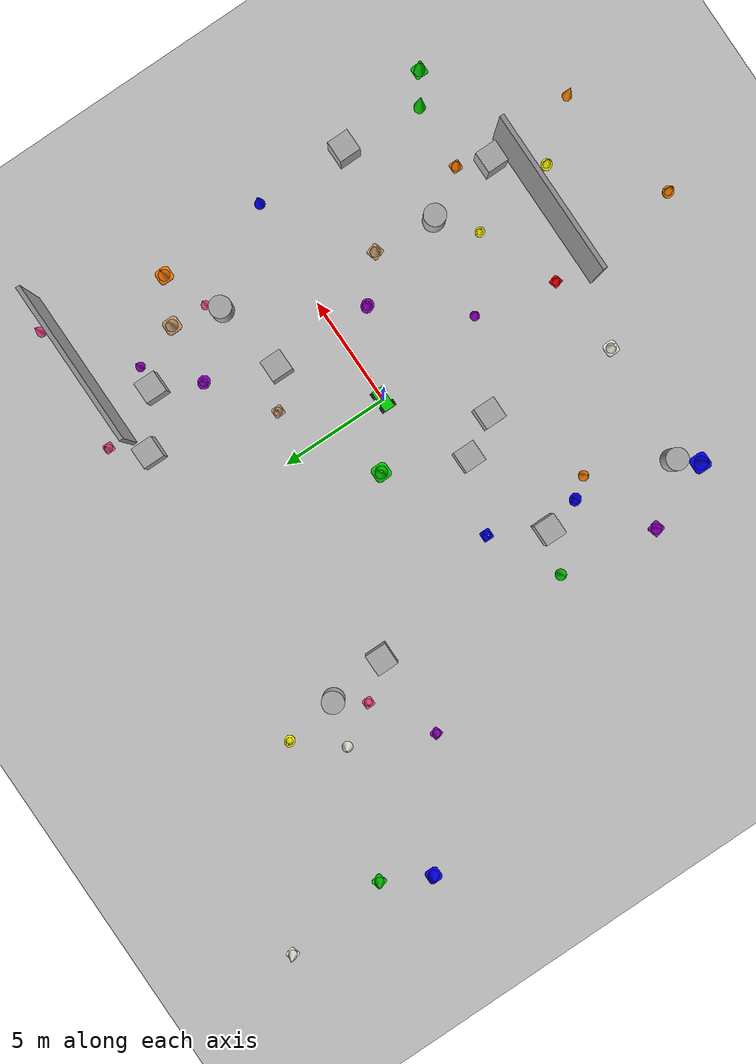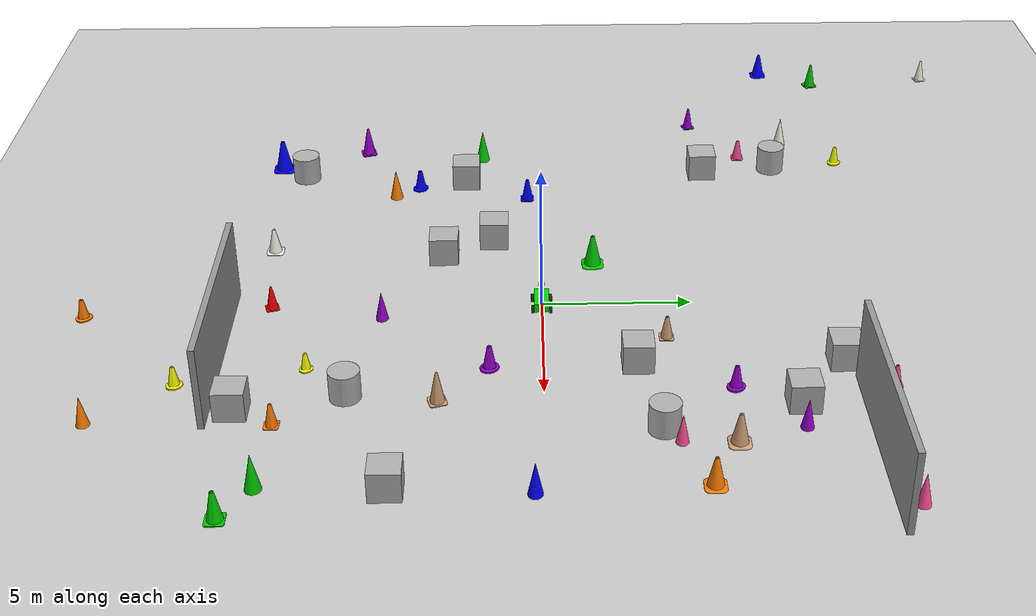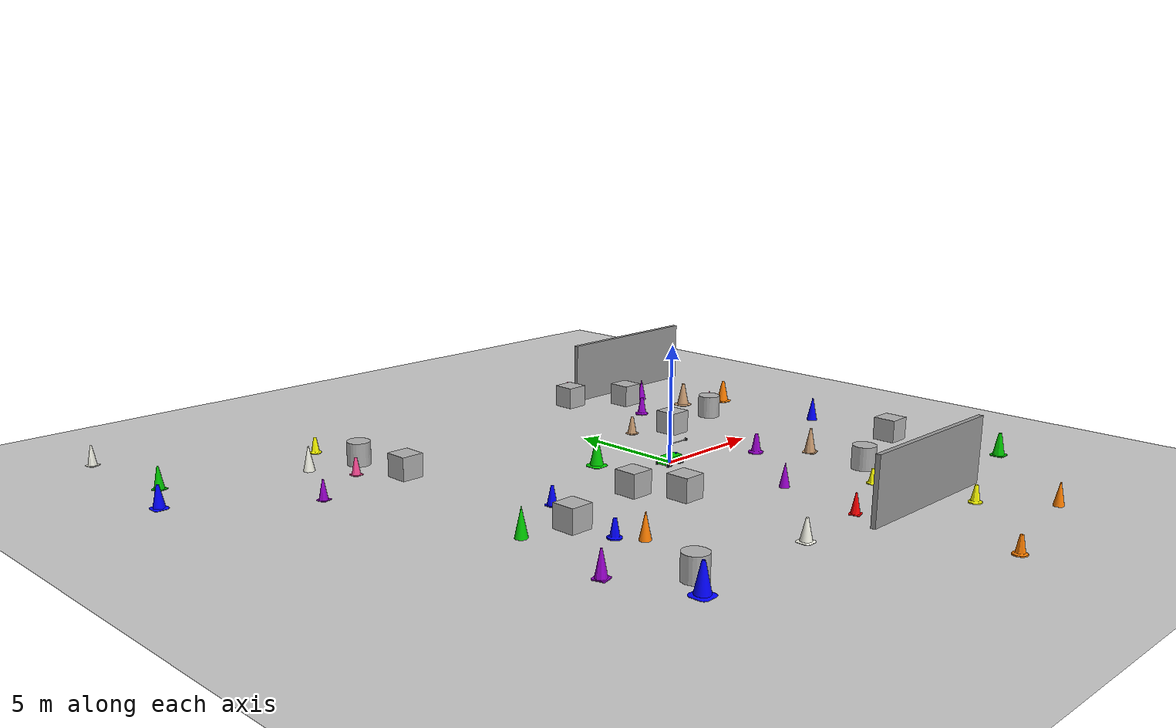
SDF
<sdf version="1.9">
 <world name="empty">
  <physics name="1ms" type="ignored">
   <max_step_size>0.001</max_step_size>
   <real_time_factor>1</real_time_factor>
   <real_time_update_rate>1000</real_time_update_rate>
  </physics>
  <plugin name="gz::sim::systems::Physics" filename="ignition-gazebo-physics-system"/>
  <plugin name="gz::sim::systems::UserCommands" filename="ignition-gazebo-user-commands-system"/>
  <plugin name="gz::sim::systems::SceneBroadcaster" filename="ignition-gazebo-scene-broadcaster-system"/>
  <plugin name="gz::sim::systems::Contact" filename="ignition-gazebo-contact-system"/>
  <plugin name="gz::sim::systems::Sensors" filename="ignition-gazebo-sensors-system">
   <render_engine>ogre2</render_engine>
  </plugin>
  <plugin name="gz::sim::systems::Imu" filename="ignition-gazebo-imu-system"/>
  <gravity>0 0 -9.8</gravity>
  <magnetic_field>6e-06 2.3e-05 -4.2e-05</magnetic_field>
  <atmosphere type="adiabatic"/>
  <scene><ambient>0.4 0.4 0.4 1</ambient><background>0.7 0.7 0.7 1</background><shadows>true</shadows></scene>
  <model name="ground_plane">
   <static>true</static>
   <link name="link">
    <collision name="collision">
     <geometry><plane><normal>0 0 1</normal><size>100 100</size></plane></geometry>
    </collision>
    <visual name="visual">
     <geometry><plane><normal>0 0 1</normal><size>100 100</size></plane></geometry>
     <material>
      <ambient>0.8 0.8 0.8 1</ambient>
      <diffuse>0.8 0.8 0.8 1</diffuse>
      <specular>0.8 0.8 0.8 1</specular>
     </material>
    </visual>
    <inertial>
     <mass>1</mass>
     <inertia><ixx>1</ixx><ixy>0</ixy><ixz>0</ixz><iyy>1</iyy><iyz>0</iyz><izz>1</izz></inertia>
    </inertial>
   </link>
  </model>
  <model name="my_robo">
   <link name="base_link">
    <inertial>
     <pose>0.006547 0 0.115974 0 -0 0</pose>
     <mass>6.1100000000000003</mass>
     <inertia>
      <ixx>0.87523700000000004</ixx>
      <ixy>0</ixy>
      <ixz>-0.0081610499999999996</ixz>
      <iyy>0.60416499999999995</iyy>
      <iyz>0</iyz>
      <izz>0.60400799999999999</izz>
     </inertia>
    </inertial>
    <collision name="base_link_collision"><geometry><box><size>1 0.5 0.3</size></box></geometry></collision>
    <collision name="base_link_fixed_joint_lump__arm_base_collision_1">
     <pose>0 0 0.55 0 0 0</pose>
     <geometry><cylinder><length>0.5</length><radius>0.050000000000000003</radius></cylinder></geometry>
    </collision>
    <collision name="base_link_fixed_joint_lump__arm_joint_cylinder_collision_2">
     <pose>0 0 0.8 0 0 0</pose>
     <geometry><cylinder><length>0.5</length><radius>0.050000000000000003</radius></cylinder></geometry>
    </collision>
    <collision name="base_link_fixed_joint_lump__imu_link_collision_3">
     <pose>0 0 0.16 0 0 0</pose>
     <geometry><box><size>0.03 0.03 0.01</size></box></geometry>
    </collision>
    <collision name="base_link_fixed_joint_lump__lidar_link_collision_4">
     <pose>0.4 0 0.32 0 0 0</pose>
     <geometry>
      <cylinder><length>0.040000000000000001</length><radius>0.050000000000000003</radius></cylinder>
     </geometry>
    </collision>
    <visual name="base_link_visual">
     <pose>0 0 0.15 0 0 0</pose>
     <geometry><box><size>1 0.5 0.3</size></box></geometry>
     <material><diffuse>0 0.875 0 1</diffuse><ambient>0 0.875 0 1</ambient></material>
    </visual>
    <visual name="base_link_fixed_joint_lump__arm_base_visual_1">
     <pose>0 0 0.55 0 0 0</pose>
     <geometry><cylinder><length>0.5</length><radius>0.050000000000000003</radius></cylinder></geometry>
     <material><diffuse>1 1 1 1</diffuse><ambient>1 1 1 1</ambient></material>
    </visual>
    <visual name="base_link_fixed_joint_lump__arm_joint_cylinder_visual_2">
     <pose>0 0 0.8 0 1.570796326794897 -1.570796326794897</pose>
     <geometry>
      <cylinder><length>0.20000000000000001</length><radius>0.059999999999999998</radius></cylinder>
     </geometry>
     <material><diffuse>1 1 1 1</diffuse><ambient>1 1 1 1</ambient></material>
    </visual>
    <visual name="base_link_fixed_joint_lump__imu_link_visual_3">
     <pose>0 0 0.16 0 0 0</pose>
     <geometry><box><size>0.03 0.03 0.01</size></box></geometry>
     <material><diffuse>0.875 0.875 0.875 1</diffuse><ambient>0.875 0.875 0.875 1</ambient></material>
    </visual>
    <visual name="base_link_fixed_joint_lump__lidar_link_visual_4">
     <pose>0.4 0 0.32 0 0 0</pose>
     <geometry>
      <cylinder><length>0.040000000000000001</length><radius>0.050000000000000003</radius></cylinder>
     </geometry>
     <material><diffuse>0 0.25 1 1</diffuse><ambient>0 0.25 1 1</ambient></material>
    </visual>
    <sensor name="imu" type="imu">
     <pose>0 0 0.31 0 0 0</pose>
     <topic>/model/my_robo/imu</topic>
     <update_rate>100</update_rate>
     <imu>
      <angular_velocity>
       <x><noise type="gaussian"><mean>0</mean><stddev>0.001</stddev></noise></x>
       <y><noise type="gaussian"><mean>0</mean><stddev>0.001</stddev></noise></y>
       <z><noise type="gaussian"><mean>0</mean><stddev>0.001</stddev></noise></z>
      </angular_velocity>
      <linear_acceleration>
       <x><noise type="gaussian"><mean>0</mean><stddev>0.01</stddev></noise></x>
       <y><noise type="gaussian"><mean>0</mean><stddev>0.01</stddev></noise></y>
       <z><noise type="gaussian"><mean>0</mean><stddev>0.01</stddev></noise></z>
      </linear_acceleration>
     </imu>
     <always_on>1</always_on>
     <visualize>true</visualize>
    </sensor>
    <sensor name="lidar" type="gpu_lidar">
     <pose>0.4 0 0.47 0 0 0</pose>
     <topic>/model/my_robo/lidar</topic>
     <update_rate>10</update_rate>
     <ray>
      <scan>
       <horizontal>
        <samples>360</samples>
        <resolution>1</resolution>
        <min_angle>-3.14159</min_angle>
        <max_angle>3.14159</max_angle>
       </horizontal>
      </scan>
      <range><min>0.15</min><max>12.0</max><resolution>0.01</resolution></range>
      <noise><type>gaussian</type><mean>0.0</mean><stddev>0.01</stddev></noise>
     </ray>
     <always_on>1</always_on>
     <visualize>true</visualize>
     <frame_id>lidar_link</frame_id>
    </sensor>
    <sensor name="front_camera" type="camera">
     <pose>0.51 0 0.3 0 0 0</pose>
     <topic>/model/my_robo/front_camera</topic>
     <update_rate>30</update_rate>
     <camera>
      <horizontal_fov>1.047</horizontal_fov>
      <image><width>640</width><height>480</height><format>R8G8B8</format></image>
      <clip><near>0.1</near><far>100</far></clip>
      <noise><type>gaussian</type><mean>0.0</mean><stddev>0.007</stddev></noise>
     </camera>
     <always_on>1</always_on>
     <visualize>true</visualize>
     <frame_id>front_camera_link</frame_id>
    </sensor>
   </link>
   <joint name="arm_to_extension" type="revolute">
    <parent>base_link</parent>
    <child>arm_extension</child>
    <axis>
     <xyz>0 1 0</xyz>
     <limit>
      <lower>-1.5700000000000001</lower>
      <upper>1.5700000000000001</upper>
      <effort>10</effort>
      <velocity>1</velocity>
      <stiffness>100000000</stiffness>
      <dissipation>1</dissipation>
     </limit>
     <dynamics>
      <spring_reference>0</spring_reference>
      <spring_stiffness>0</spring_stiffness>
      <damping>0</damping>
      <friction>0</friction>
     </dynamics>
    </axis>
   </joint>
   <link name="arm_extension">
    <pose>0 0 0.8 0 -0 0</pose>
    <inertial>
     <pose>0.091 0 0 0 -0 0</pose>
     <mass>0.55000000000000004</mass>
     <inertia>
      <ixx>0.010829999999999999</ixx>
      <ixy>0</ixy>
      <ixz>0</ixz>
      <iyy>0.046270499999999999</iyy>
      <iyz>0</iyz>
      <izz>0.056375500000000002</izz>
     </inertia>
    </inertial>
    <collision name="arm_extension_collision">
     <geometry><cylinder><length>1</length><radius>0.050000000000000003</radius></cylinder></geometry>
    </collision>
    <collision name="arm_extension_fixed_joint_lump__camera_link_collision_1">
     <pose>1.001 0 0 0 0 0</pose>
     <geometry><box><size>0.05 0.08 0.05</size></box></geometry>
    </collision>
    <visual name="arm_extension_visual">
     <pose>0.5 0 0 0 1.570796326794897 0</pose>
     <geometry><cylinder><length>1</length><radius>0.02</radius></cylinder></geometry>
     <material><diffuse>1 1 1 1</diffuse><ambient>1 1 1 1</ambient></material>
    </visual>
    <visual name="arm_extension_fixed_joint_lump__camera_link_visual_1">
     <pose>1.001 0 0 0 0 0</pose>
     <geometry><box><size>0.1 0.08 0.1</size></box></geometry>
     <material><diffuse>0.125 0.125 0.125 1</diffuse><ambient>0.125 0.125 0.125 1</ambient></material>
    </visual>
    <sensor name="camera" type="camera">
     <pose>1.001 0 0.95 0 0 0</pose>
     <topic>/model/my_robo/camera</topic>
     <update_rate>30</update_rate>
     <camera>
      <horizontal_fov>1.047</horizontal_fov>
      <image><width>640</width><height>480</height><format>R8G8B8</format></image>
      <clip><near>0.1</near><far>100</far></clip>
      <noise><type>gaussian</type><mean>0.0</mean><stddev>0.007</stddev></noise>
     </camera>
     <always_on>1</always_on>
     <visualize>true</visualize>
     <frame_id>camera_link</frame_id>
    </sensor>
   </link>
   <joint name="front_left_wheel_joint" type="revolute">
    <parent>base_link</parent>
    <child>front_left_wheel</child>
    <axis>
     <xyz>0 1 0</xyz>
     <limit>
      <lower>-10000000000000000</lower>
      <upper>10000000000000000</upper>
      <effort>inf</effort>
      <velocity>inf</velocity>
      <stiffness>100000000</stiffness>
      <dissipation>1</dissipation>
     </limit>
     <dynamics>
      <spring_reference>0</spring_reference>
      <spring_stiffness>0</spring_stiffness>
      <damping>0</damping>
      <friction>0</friction>
     </dynamics>
    </axis>
   </joint>
   <link name="front_left_wheel">
    <pose>0.35 0.3 0 0 -0 0</pose>
    <inertial>
     <pose>0 0 0 1.5708 -0 0</pose>
     <mass>1</mass>
     <inertia>
      <ixx>0.0064599999999999996</ixx>
      <ixy>0</ixy>
      <ixz>0</ixz>
      <iyy>0.01125</iyy>
      <iyz>0</iyz>
      <izz>0.0064599999999999996</izz>
     </inertia>
    </inertial>
    <surface>
     <friction><ode><mu>0.05</mu><mu2>0.05</mu2><slip1>1.0</slip1><slip2>1.0</slip2></ode></friction>
    </surface>
    <collision name="front_left_wheel_collision">
     <pose>0 0 0 1.5708 0 0</pose>
     <geometry>
      <cylinder><length>0.10000000000000001</length><radius>0.14999999999999999</radius></cylinder>
     </geometry>
    </collision>
    <visual name="front_left_wheel_visual">
     <pose>0 0 0 1.5708 0 0</pose>
     <geometry>
      <cylinder><length>0.10000000000000001</length><radius>0.14999999999999999</radius></cylinder>
     </geometry>
     <material><diffuse>0.125 0.125 0.125 1</diffuse><ambient>0.125 0.125 0.125 1</ambient></material>
    </visual>
   </link>
   <joint name="front_right_wheel_joint" type="revolute">
    <parent>base_link</parent>
    <child>front_right_wheel</child>
    <axis>
     <xyz>0 1 0</xyz>
     <limit>
      <lower>-10000000000000000</lower>
      <upper>10000000000000000</upper>
      <effort>inf</effort>
      <velocity>inf</velocity>
      <stiffness>100000000</stiffness>
      <dissipation>1</dissipation>
     </limit>
     <dynamics>
      <spring_reference>0</spring_reference>
      <spring_stiffness>0</spring_stiffness>
      <damping>0</damping>
      <friction>0</friction>
     </dynamics>
    </axis>
   </joint>
   <link name="front_right_wheel">
    <pose>-0.35 0.3 0 0 -0 0</pose>
    <inertial>
     <pose>0 0 0 1.5708 -0 0</pose>
     <mass>1</mass>
     <inertia>
      <ixx>0.0064599999999999996</ixx>
      <ixy>0</ixy>
      <ixz>0</ixz>
      <iyy>0.01125</iyy>
      <iyz>0</iyz>
      <izz>0.0064599999999999996</izz>
     </inertia>
    </inertial>
    <surface>
     <friction><ode><mu>0.05</mu><mu2>0.05</mu2><slip1>1.0</slip1><slip2>1.0</slip2></ode></friction>
    </surface>
    <collision name="front_right_wheel_collision">
     <pose>0 0 0 1.5708 0 0</pose>
     <geometry>
      <cylinder><length>0.10000000000000001</length><radius>0.14999999999999999</radius></cylinder>
     </geometry>
    </collision>
    <visual name="front_right_wheel_visual">
     <pose>0 0 0 1.5708 0 0</pose>
     <geometry>
      <cylinder><length>0.10000000000000001</length><radius>0.14999999999999999</radius></cylinder>
     </geometry>
     <material><diffuse>0.125 0.125 0.125 1</diffuse><ambient>0.125 0.125 0.125 1</ambient></material>
    </visual>
   </link>
   <joint name="rear_left_wheel_joint" type="revolute">
    <parent>base_link</parent>
    <child>rear_left_wheel</child>
    <axis>
     <xyz>0 1 0</xyz>
     <limit>
      <lower>-10000000000000000</lower>
      <upper>10000000000000000</upper>
      <effort>inf</effort>
      <velocity>inf</velocity>
      <stiffness>100000000</stiffness>
      <dissipation>1</dissipation>
     </limit>
     <dynamics>
      <spring_reference>0</spring_reference>
      <spring_stiffness>0</spring_stiffness>
      <damping>0</damping>
      <friction>0</friction>
     </dynamics>
    </axis>
   </joint>
   <link name="rear_left_wheel">
    <pose>0.35 -0.3 0 0 -0 0</pose>
    <inertial>
     <pose>0 0 0 1.5708 -0 0</pose>
     <mass>1</mass>
     <inertia>
      <ixx>0.0064599999999999996</ixx>
      <ixy>0</ixy>
      <ixz>0</ixz>
      <iyy>0.01125</iyy>
      <iyz>0</iyz>
      <izz>0.0064599999999999996</izz>
     </inertia>
    </inertial>
    <surface>
     <friction><ode><mu>1.0</mu><mu2>0.3</mu2><slip1>0.0</slip1><slip2>0.2</slip2></ode></friction>
    </surface>
    <collision name="rear_left_wheel_collision">
     <pose>0 0 0 1.5708 0 0</pose>
     <geometry>
      <cylinder><length>0.10000000000000001</length><radius>0.14999999999999999</radius></cylinder>
     </geometry>
    </collision>
    <visual name="rear_left_wheel_visual">
     <pose>0 0 0 1.5708 0 0</pose>
     <geometry>
      <cylinder><length>0.10000000000000001</length><radius>0.14999999999999999</radius></cylinder>
     </geometry>
     <material><diffuse>0.125 0.125 0.125 1</diffuse><ambient>0.125 0.125 0.125 1</ambient></material>
    </visual>
   </link>
   <joint name="rear_right_wheel_joint" type="revolute">
    <parent>base_link</parent>
    <child>rear_right_wheel</child>
    <axis>
     <xyz>0 1 0</xyz>
     <limit>
      <lower>-10000000000000000</lower>
      <upper>10000000000000000</upper>
      <effort>inf</effort>
      <velocity>inf</velocity>
      <stiffness>100000000</stiffness>
      <dissipation>1</dissipation>
     </limit>
     <dynamics>
      <spring_reference>0</spring_reference>
      <spring_stiffness>0</spring_stiffness>
      <damping>0</damping>
      <friction>0</friction>
     </dynamics>
    </axis>
   </joint>
   <link name="rear_right_wheel">
    <pose>-0.35 -0.3 0 0 -0 0</pose>
    <inertial>
     <pose>0 0 0 1.5708 -0 0</pose>
     <mass>1</mass>
     <inertia>
      <ixx>0.0064599999999999996</ixx>
      <ixy>0</ixy>
      <ixz>0</ixz>
      <iyy>0.01125</iyy>
      <iyz>0</iyz>
      <izz>0.0064599999999999996</izz>
     </inertia>
    </inertial>
    <surface>
     <friction><ode><mu>1.0</mu><mu2>0.3</mu2><slip1>0.0</slip1><slip2>0.2</slip2></ode></friction>
    </surface>
    <collision name="rear_right_wheel_collision">
     <pose>0 0 0 1.5708 0 0</pose>
     <geometry>
      <cylinder><length>0.10000000000000001</length><radius>0.14999999999999999</radius></cylinder>
     </geometry>
    </collision>
    <visual name="rear_right_wheel_visual">
     <pose>0 0 0 1.5708 0 0</pose>
     <geometry>
      <cylinder><length>0.10000000000000001</length><radius>0.14999999999999999</radius></cylinder>
     </geometry>
     <material><diffuse>0.125 0.125 0.125 1</diffuse><ambient>0.125 0.125 0.125 1</ambient></material>
    </visual>
   </link>
   <plugin name="ignition::gazebo::systems::DiffDrive" filename="libignition-gazebo-diff-drive-system.so">
    <left_joint>rear_left_wheel_joint</left_joint>
    <right_joint>rear_right_wheel_joint</right_joint>
    <wheel_separation>0.5</wheel_separation>
    <wheel_radius>0.15</wheel_radius>
    <odom_publish_frequency>1</odom_publish_frequency>
    <odom_topic>/model/my_robo/odometry</odom_topic>
    <topic>/model/my_robo/cmd_vel</topic>
    <publish_odom>true</publish_odom>
    <publish_odom_tf>true</publish_odom_tf>
    <publish_wheel_tf>true</publish_wheel_tf>
   </plugin>
   <plugin name="ignition::gazebo::systems::JointStatePublisher" filename="libignition-gazebo-joint-state-publisher-system.so">
    <joint>rear_left_wheel_joint</joint>
    <joint>rear_right_wheel_joint</joint>
    <joint>front_left_wheel_joint</joint>
    <joint>front_right_wheel_joint</joint>
    <joint>arm_to_extension</joint>
   </plugin>
   <plugin filename="gz_ros2_control-system" name="gz_ros2_control::GazeboSimROS2ControlPlugin">
    <robot_param>robot_description</robot_param>
    <robot_param_node>robot_state_publisher</robot_param_node>
    <parameters>/home/abhay-07/arm_controllers.yaml</parameters>
   </plugin>
   <frame name="arm_to_extension_cylinder" attached_to="arm_base"><pose>0 0 0.25 0 -0 0</pose></frame>
   <frame name="arm_joint_cylinder" attached_to="arm_to_extension_cylinder"/>
   <frame name="arm_to_base" attached_to="base_link"><pose>0 0 0.55 0 -0 0</pose></frame>
   <frame name="arm_base" attached_to="arm_to_base"/>
   <frame name="end_effector_to_ae" attached_to="arm_extension"><pose>1.001 0 0 0 -0 0</pose></frame>
   <frame name="camera_link" attached_to="end_effector_to_ae"/>
   <frame name="imu_joint" attached_to="base_link"><pose>0 0 0.16 0 -0 0</pose></frame>
   <frame name="imu_link" attached_to="imu_joint"/>
   <frame name="lidar_joint" attached_to="base_link"><pose>0.4 0 0.32 0 -0 0</pose></frame>
   <frame name="lidar_link" attached_to="lidar_joint"/>
   <frame name="front_camera_link" attached_to="base_link"><pose>0.51 0 0.3 0 0 0</pose></frame>
   <static>false</static>
  </model>
  <model name="grey_wall">
   <static>true</static>
   <link name="link">
    <pose>0 0 1.4 0 -0 0</pose>
    <collision name="collision"><geometry><box><size>7.5 0.2 2.8</size></box></geometry></collision>
    <visual name="visual">
     <cast_shadows>false</cast_shadows>
     <geometry><box><size>7.5 0.2 2.8</size></box></geometry>
     <material>
      <script>
       <uri>https://fuel.gazebosim.org/1.0/openrobotics/models/grey wall/3/files/materials/scripts</uri>
       <uri>https://fuel.gazebosim.org/1.0/openrobotics/models/grey wall/3/files/materials/textures</uri>
       <name>vrc/grey_wall</name>
      </script>
     </material>
    </visual>
    <inertial>
     <mass>1</mass>
     <inertia><ixx>1</ixx><ixy>0</ixy><ixz>0</ixz><iyy>1</iyy><iyz>0</iyz><izz>1</izz></inertia>
    </inertial>
   </link>
   <pose>2.89274 -10.265 0 0 -0 0</pose>
  </model>
  <model name="grey_wall_1">
   <static>true</static>
   <link name="link">
    <pose>0 0 1.4 0 0 0</pose>
    <collision name="collision"><geometry><box><size>7.5 0.2 2.8</size></box></geometry></collision>
    <visual name="visual">
     <cast_shadows>false</cast_shadows>
     <geometry><box><size>7.5 0.2 2.8</size></box></geometry>
     <material>
      <script>
       <uri>https://fuel.gazebosim.org/1.0/openrobotics/models/grey wall/3/files/materials/scripts</uri>
       <uri>https://fuel.gazebosim.org/1.0/openrobotics/models/grey wall/3/files/materials/textures</uri>
       <name>vrc/grey_wall</name>
      </script>
     </material>
    </visual>
   </link>
   <pose>8.13841 9.86065 0 0 -0 0</pose>
  </model>
  <model name="box">
   <pose>3.64967 9.51151 0.5 0 -0 0</pose>
   <link name="box_link">
    <inertial>
     <inertia><ixx>0.16666</ixx><ixy>0</ixy><ixz>0</ixz><iyy>0.16666</iyy><iyz>0</iyz><izz>0.16666</izz></inertia>
     <mass>1</mass>
    </inertial>
    <collision name="box_collision"><geometry><box><size>1 1 1</size></box></geometry></collision>
    <visual name="box_visual">
     <geometry><box><size>1 1 1</size></box></geometry>
     <material>
      <ambient>0.3 0.3 0.3 1</ambient>
      <diffuse>0.7 0.7 0.7 1</diffuse>
      <specular>1 1 1 1</specular>
     </material>
    </visual>
   </link>
   <static>false</static>
  </model>
  <model name="box_0">
   <pose>5.86286 7.88014 0.5 0 -0 0</pose>
   <link name="box_link">
    <inertial>
     <inertia><ixx>0.16666</ixx><ixy>0</ixy><ixz>0</ixz><iyy>0.16666</iyy><iyz>0</iyz><izz>0.16666</izz></inertia>
     <mass>1</mass>
    </inertial>
    <collision name="box_collision"><geometry><box><size>1 1 1</size></box></geometry></collision>
    <visual name="box_visual">
     <geometry><box><size>1 1 1</size></box></geometry>
     <material>
      <ambient>0.3 0.3 0.3 1</ambient>
      <diffuse>0.7 0.7 0.7 1</diffuse>
      <specular>1 1 1 1</specular>
     </material>
    </visual>
   </link>
   <static>false</static>
  </model>
  <model name="box_1">
   <pose>-9.1038 6.24731 0.5 0 -0 0</pose>
   <link name="box_link">
    <inertial>
     <inertia><ixx>0.16666</ixx><ixy>0</ixy><ixz>0</ixz><iyy>0.16666</iyy><iyz>0</iyz><izz>0.16666</izz></inertia>
     <mass>1</mass>
    </inertial>
    <collision name="box_collision"><geometry><box><size>1 1 1</size></box></geometry></collision>
    <visual name="box_visual">
     <geometry><box><size>1 1 1</size></box></geometry>
     <material>
      <ambient>0.3 0.3 0.3 1</ambient>
      <diffuse>0.7 0.7 0.7 1</diffuse>
      <specular>1 1 1 1</specular>
     </material>
    </visual>
   </link>
   <static>false</static>
  </model>
  <model name="box_2">
   <pose>9.7016 -4.55837 0.5 0 -0 0</pose>
   <link name="box_link">
    <inertial>
     <inertia><ixx>0.16666</ixx><ixy>0</ixy><ixz>0</ixz><iyy>0.16666</iyy><iyz>0</iyz><izz>0.16666</izz></inertia>
     <mass>1</mass>
    </inertial>
    <collision name="box_collision"><geometry><box><size>1 1 1</size></box></geometry></collision>
    <visual name="box_visual">
     <geometry><box><size>1 1 1</size></box></geometry>
     <material>
      <ambient>0.3 0.3 0.3 1</ambient>
      <diffuse>0.7 0.7 0.7 1</diffuse>
      <specular>1 1 1 1</specular>
     </material>
    </visual>
   </link>
   <static>false</static>
  </model>
  <model name="box_3">
   <pose>5.83862 -9.47108 0.5 0 -0 0</pose>
   <link name="box_link">
    <inertial>
     <inertia><ixx>0.16666</ixx><ixy>0</ixy><ixz>0</ixz><iyy>0.16666</iyy><iyz>0</iyz><izz>0.16666</izz></inertia>
     <mass>1</mass>
    </inertial>
    <collision name="box_collision"><geometry><box><size>1 1 1</size></box></geometry></collision>
    <visual name="box_visual">
     <geometry><box><size>1 1 1</size></box></geometry>
     <material>
      <ambient>0.3 0.3 0.3 1</ambient>
      <diffuse>0.7 0.7 0.7 1</diffuse>
      <specular>1 1 1 1</specular>
     </material>
    </visual>
   </link>
   <static>false</static>
  </model>
  <model name="box_4">
   <pose>3.64593 2.97749 0.5 0 -0 0</pose>
   <link name="box_link">
    <inertial>
     <inertia><ixx>0.16666</ixx><ixy>0</ixy><ixz>0</ixz><iyy>0.16666</iyy><iyz>0</iyz><izz>0.16666</izz></inertia>
     <mass>1</mass>
    </inertial>
    <collision name="box_collision"><geometry><box><size>1 1 1</size></box></geometry></collision>
    <visual name="box_visual">
     <geometry><box><size>1 1 1</size></box></geometry>
     <material>
      <ambient>0.3 0.3 0.3 1</ambient>
      <diffuse>0.7 0.7 0.7 1</diffuse>
      <specular>1 1 1 1</specular>
     </material>
    </visual>
   </link>
   <static>false</static>
  </model>
  <model name="box_5">
   <pose>-3.05825 -3.35371 0.5 0 -0 0</pose>
   <link name="box_link">
    <inertial>
     <inertia><ixx>0.16666</ixx><ixy>0</ixy><ixz>0</ixz><iyy>0.16666</iyy><iyz>0</iyz><izz>0.16666</izz></inertia>
     <mass>1</mass>
    </inertial>
    <collision name="box_collision"><geometry><box><size>1 1 1</size></box></geometry></collision>
    <visual name="box_visual">
     <geometry><box><size>1 1 1</size></box></geometry>
     <material>
      <ambient>0.3 0.3 0.3 1</ambient>
      <diffuse>0.7 0.7 0.7 1</diffuse>
      <specular>1 1 1 1</specular>
     </material>
    </visual>
   </link>
   <static>false</static>
  </model>
  <model name="box_6">
   <pose>-4.09117 -1.61728 0.5 0 -0 0</pose>
   <link name="box_link">
    <inertial>
     <inertia><ixx>0.16666</ixx><ixy>0</ixy><ixz>0</ixz><iyy>0.16666</iyy><iyz>0</iyz><izz>0.16666</izz></inertia>
     <mass>1</mass>
    </inertial>
    <collision name="box_collision"><geometry><box><size>1 1 1</size></box></geometry></collision>
    <visual name="box_visual">
     <geometry><box><size>1 1 1</size></box></geometry>
     <material>
      <ambient>0.3 0.3 0.3 1</ambient>
      <diffuse>0.7 0.7 0.7 1</diffuse>
      <specular>1 1 1 1</specular>
     </material>
    </visual>
   </link>
   <static>false</static>
  </model>
  <model name="box_7">
   <pose>-8.54137 -2.70119 0.5 0 -0 0</pose>
   <link name="box_link">
    <inertial>
     <inertia><ixx>0.16666</ixx><ixy>0</ixy><ixz>0</ixz><iyy>0.16666</iyy><iyz>0</iyz><izz>0.16666</izz></inertia>
     <mass>1</mass>
    </inertial>
    <collision name="box_collision"><geometry><box><size>1 1 1</size></box></geometry></collision>
    <visual name="box_visual">
     <geometry><box><size>1 1 1</size></box></geometry>
     <material>
      <ambient>0.3 0.3 0.3 1</ambient>
      <diffuse>0.7 0.7 0.7 1</diffuse>
      <specular>1 1 1 1</specular>
     </material>
    </visual>
   </link>
   <static>false</static>
  </model>
  <model name="cylinder">
   <pose>5.13926 -6.10192 0.5 0 -0 0</pose>
   <link name="cylinder_link">
    <inertial>
     <inertia>
      <ixx>0.14580000000000001</ixx>
      <ixy>0</ixy>
      <ixz>0</ixz>
      <iyy>0.14580000000000001</iyy>
      <iyz>0</iyz>
      <izz>0.125</izz>
     </inertia>
     <mass>1</mass>
    </inertial>
    <collision name="cylinder_collision">
     <geometry><cylinder><radius>0.5</radius><length>1</length></cylinder></geometry>
    </collision>
    <visual name="cylinder_visual">
     <geometry><cylinder><radius>0.5</radius><length>1</length></cylinder></geometry>
     <material>
      <ambient>0.3 0.3 0.3 1</ambient>
      <diffuse>0.7 0.7 0.7 1</diffuse>
      <specular>1 1 1 1</specular>
     </material>
    </visual>
   </link>
   <static>false</static>
  </model>
  <model name="cylinder_0">
   <pose>7.00797 3.54847 0.5 0 -0 0</pose>
   <link name="cylinder_link">
    <inertial>
     <inertia>
      <ixx>0.14580000000000001</ixx>
      <ixy>0</ixy>
      <ixz>0</ixz>
      <iyy>0.14580000000000001</iyy>
      <iyz>0</iyz>
      <izz>0.125</izz>
     </inertia>
     <mass>1</mass>
    </inertial>
    <collision name="cylinder_collision">
     <geometry><cylinder><radius>0.5</radius><length>1</length></cylinder></geometry>
    </collision>
    <visual name="cylinder_visual">
     <geometry><cylinder><radius>0.5</radius><length>1</length></cylinder></geometry>
     <material>
      <ambient>0.3 0.3 0.3 1</ambient>
      <diffuse>0.7 0.7 0.7 1</diffuse>
      <specular>1 1 1 1</specular>
     </material>
    </visual>
   </link>
   <static>false</static>
  </model>
  <model name="cylinder_1">
   <pose>-9.44265 8.95448 0.5 0 -0 0</pose>
   <link name="cylinder_link">
    <inertial>
     <inertia>
      <ixx>0.14580000000000001</ixx>
      <ixy>0</ixy>
      <ixz>0</ixz>
      <iyy>0.14580000000000001</iyy>
      <iyz>0</iyz>
      <izz>0.125</izz>
     </inertia>
     <mass>1</mass>
    </inertial>
    <collision name="cylinder_collision">
     <geometry><cylinder><radius>0.5</radius><length>1</length></cylinder></geometry>
    </collision>
    <visual name="cylinder_visual">
     <geometry><cylinder><radius>0.5</radius><length>1</length></cylinder></geometry>
     <material>
      <ambient>0.3 0.3 0.3 1</ambient>
      <diffuse>0.7 0.7 0.7 1</diffuse>
      <specular>1 1 1 1</specular>
     </material>
    </visual>
   </link>
   <static>false</static>
  </model>
  <model name="cylinder_2">
   <pose>-9.07969 -8.79365 0.5 0 -0 0</pose>
   <link name="cylinder_link">
    <inertial>
     <inertia>
      <ixx>0.14580000000000001</ixx>
      <ixy>0</ixy>
      <ixz>0</ixz>
      <iyy>0.14580000000000001</iyy>
      <iyz>0</iyz>
      <izz>0.125</izz>
     </inertia>
     <mass>1</mass>
    </inertial>
    <collision name="cylinder_collision">
     <geometry><cylinder><radius>0.5</radius><length>1</length></cylinder></geometry>
    </collision>
    <visual name="cylinder_visual">
     <geometry><cylinder><radius>0.5</radius><length>1</length></cylinder></geometry>
     <material>
      <ambient>0.3 0.3 0.3 1</ambient>
      <diffuse>0.7 0.7 0.7 1</diffuse>
      <specular>1 1 1 1</specular>
     </material>
    </visual>
   </link>
   <static>false</static>
  </model>
  <model name="football_cone">
   <static>true</static>
   <link name="link">
    <visual name="visual">
     <geometry>
      <mesh>
       <uri>file:///home/abhay-07/.gz/models/cone_4/model://cone_4/meshes/football_cone.stl</uri>
       <scale>0.3378 0.3378 0.3378</scale>
      </mesh>
     </geometry>
     <material><ambient>0.8 0.4 0.0 1</ambient><diffuse>1.0 0.5 0.0 1</diffuse></material>
    </visual>
    <collision name="collision">
     <geometry><cylinder><radius>0.0922</radius><length>0.3690</length></cylinder></geometry>
    </collision>
    <inertial>
     <mass>1</mass>
     <inertia><ixx>1</ixx><ixy>0</ixy><ixz>0</ixz><iyy>1</iyy><iyz>0</iyz><izz>1</izz></inertia>
    </inertial>
   </link>
   <pose>8.99769 3.77241 0 0 -0 0</pose>
  </model>
  <model name="safety_cone">
   <static>true</static>
   <link name="link">
    <visual name="visual">
     <geometry>
      <mesh>
       <uri>file:///home/abhay-07/.gz/models/cone_5/model://cone_5/meshes/safety_cone.stl</uri>
       <scale>0.3713 0.3713 0.3713</scale>
      </mesh>
     </geometry>
     <material><ambient>0.72 0.55 0.40 1</ambient><diffuse>0.80 0.62 0.45 1</diffuse></material>
    </visual>
    <collision name="collision">
     <geometry><cylinder><radius>0.0767</radius><length>0.3068</length></cylinder></geometry>
    </collision>
    <inertial>
     <mass>1</mass>
     <inertia><ixx>1</ixx><ixy>0</ixy><ixz>0</ixz><iyy>1</iyy><iyz>0</iyz><izz>1</izz></inertia>
    </inertial>
   </link>
   <pose>-2.72411 -1.42066 0 0 -0 0</pose>
  </model>
  <model name="cone_3">
   <static>true</static>
   <link name="link">
    <visual name="visual">
     <geometry>
      <mesh>
       <uri>file:///home/abhay-07/.gz/models/cone_2/model://cone_2/meshes/cone_3.stl</uri>
       <scale>0.3707 0.3707 0.3707</scale>
      </mesh>
     </geometry>
     <material><ambient>0.4 0.0 0.6 1</ambient><diffuse>0.6 0.0 0.8 1</diffuse></material>
    </visual>
    <collision name="collision">
     <geometry><cylinder><radius>0.0731</radius><length>0.2923</length></cylinder></geometry>
    </collision>
    <inertial>
     <mass>1</mass>
     <inertia><ixx>1</ixx><ixy>0</ixy><ixz>0</ixz><iyy>1</iyy><iyz>0</iyz><izz>1</izz></inertia>
    </inertial>
   </link>
   <pose>2.24203 3.05497 0 0 -0 0</pose>
  </model>
  <model name="cone_red">
   <static>true</static>
   <link name="link">
    <visual name="visual">
     <geometry>
      <mesh>
       <uri>file:///home/abhay-07/.gz/models/cone_red/model://cone_red/meshes/cone.stl</uri>
       <scale>0.0151 0.0151 0.0151</scale>
      </mesh>
     </geometry>
     <material><ambient>0.8 0.2 0.5 1</ambient><diffuse>1.0 0.3 0.6 1</diffuse></material>
    </visual>
    <collision name="collision">
     <geometry><cylinder><radius>0.0500</radius><length>0.1000</length></cylinder></geometry>
    </collision>
    <inertial>
     <mass>1</mass>
     <inertia><ixx>1</ixx><ixy>0</ixy><ixz>0</ixz><iyy>1</iyy><iyz>0</iyz><izz>1</izz></inertia>
    </inertial>
   </link>
   <pose>7.57855 4.06586 0 0 -0 0</pose>
  </model>
  <model name="another_cone">
   <static>true</static>
   <link name="link">
    <visual name="visual">
     <geometry>
      <mesh>
       <uri>file:///home/abhay-07/.gz/models/cone_3/model://cone_3/meshes/another_cone.stl</uri>
       <scale>0.281 0.281 0.281</scale>
      </mesh>
     </geometry>
     <material><ambient>0.8 0.2 0.5 1</ambient><diffuse>1.0 0.3 0.6 1</diffuse></material>
    </visual>
    <collision name="collision">
     <geometry><cylinder><radius>0.0877</radius><length>0.3509</length></cylinder></geometry>
    </collision>
    <inertial>
     <mass>1</mass>
     <inertia><ixx>1</ixx><ixy>0</ixy><ixz>0</ixz><iyy>1</iyy><iyz>0</iyz><izz>1</izz></inertia>
    </inertial>
   </link>
   <pose>1.79211 12.5895 0 0 -0 0</pose>
  </model>
  <model name="cone_red_0">
   <static>true</static>
   <link name="link">
    <visual name="visual">
     <geometry>
      <mesh>
       <uri>file:///home/abhay-07/.gz/models/cone_red/model://cone_red/meshes/cone.stl</uri>
       <scale>0.0154 0.0154 0.0154</scale>
      </mesh>
     </geometry>
     <material><ambient>0.4 0.0 0.6 1</ambient><diffuse>0.6 0.0 0.8 1</diffuse></material>
    </visual>
    <collision name="collision">
     <geometry><cylinder><radius>0.0500</radius><length>0.1000</length></cylinder></geometry>
    </collision>
    <inertial>
     <mass>1</mass>
     <inertia><ixx>1</ixx><ixy>0</ixy><ixz>0</ixz><iyy>1</iyy><iyz>0</iyz><izz>1</izz></inertia>
    </inertial>
   </link>
   <pose>6.95342 7.86441 0 0 -0 0</pose>
  </model>
  <model name="another_cone_0">
   <static>true</static>
   <link name="link">
    <visual name="visual">
     <geometry>
      <mesh>
       <uri>file:///home/abhay-07/.gz/models/cone_3/model://cone_3/meshes/another_cone.stl</uri>
       <scale>0.3909 0.3909 0.3909</scale>
      </mesh>
     </geometry>
     <material><ambient>0.0 0.6 0.0 1</ambient><diffuse>0.0 0.8 0.0 1</diffuse></material>
    </visual>
    <collision name="collision">
     <geometry><cylinder><radius>0.0770</radius><length>0.3079</length></cylinder></geometry>
    </collision>
    <inertial>
     <mass>1</mass>
     <inertia><ixx>1</ixx><ixy>0</ixy><ixz>0</ixz><iyy>1</iyy><iyz>0</iyz><izz>1</izz></inertia>
    </inertial>
   </link>
   <pose>6.51559 -6.84749 0 0 -0 0</pose>
  </model>
  <model name="cone_red_1">
   <static>true</static>
   <link name="link">
    <visual name="visual">
     <geometry>
      <mesh>
       <uri>file:///home/abhay-07/.gz/models/cone_red/model://cone_red/meshes/cone.stl</uri>
       <scale>0.0155 0.0155 0.0155</scale>
      </mesh>
     </geometry>
     <material><ambient>0.8 0.4 0.0 1</ambient><diffuse>1.0 0.5 0.0 1</diffuse></material>
    </visual>
    <collision name="collision">
     <geometry><cylinder><radius>0.0500</radius><length>0.1000</length></cylinder></geometry>
    </collision>
    <inertial>
     <mass>1</mass>
     <inertia><ixx>1</ixx><ixy>0</ixy><ixz>0</ixz><iyy>1</iyy><iyz>0</iyz><izz>1</izz></inertia>
    </inertial>
   </link>
   <pose>6.3132 -13.7885 0 0 -0 0</pose>
  </model>
  <model name="cone_3_0">
   <static>true</static>
   <link name="link">
    <visual name="visual">
     <geometry>
      <mesh>
       <uri>file:///home/abhay-07/.gz/models/cone_2/model://cone_2/meshes/cone_3.stl</uri>
       <scale>0.3268 0.3268 0.3268</scale>
      </mesh>
     </geometry>
     <material><ambient>0.8 0.8 0.0 1</ambient><diffuse>1.0 1.0 0.0 1</diffuse></material>
    </visual>
    <collision name="collision">
     <geometry><cylinder><radius>0.0915</radius><length>0.3659</length></cylinder></geometry>
    </collision>
    <inertial>
     <mass>1</mass>
     <inertia><ixx>1</ixx><ixy>0</ixy><ixz>0</ixz><iyy>1</iyy><iyz>0</iyz><izz>1</izz></inertia>
    </inertial>
   </link>
   <pose>2.05775 -13.9966 0 0 -0 0</pose>
  </model>
  <model name="cone_3_1">
   <static>true</static>
   <link name="link">
    <visual name="visual">
     <geometry>
      <mesh>
       <uri>file:///home/abhay-07/.gz/models/cone_2/model://cone_2/meshes/cone_3.stl</uri>
       <scale>0.3371 0.3371 0.3371</scale>
      </mesh>
     </geometry>
     <material><ambient>0.8 0.4 0.0 1</ambient><diffuse>1.0 0.5 0.0 1</diffuse></material>
    </visual>
    <collision name="collision">
     <geometry><cylinder><radius>0.0863</radius><length>0.3454</length></cylinder></geometry>
    </collision>
    <inertial>
     <mass>1</mass>
     <inertia><ixx>1</ixx><ixy>0</ixy><ixz>0</ixz><iyy>1</iyy><iyz>0</iyz><izz>1</izz></inertia>
    </inertial>
   </link>
   <pose>-1.90886 -17.7406 0 0 -0 0</pose>
  </model>
  <model name="cone_3_2">
   <static>true</static>
   <link name="link">
    <visual name="visual">
     <geometry>
      <mesh>
       <uri>file:///home/abhay-07/.gz/models/cone_2/model://cone_2/meshes/cone_3.stl</uri>
       <scale>0.3861 0.3861 0.3861</scale>
      </mesh>
     </geometry>
     <material><ambient>0.4 0.0 0.6 1</ambient><diffuse>0.6 0.0 0.8 1</diffuse></material>
    </visual>
    <collision name="collision">
     <geometry><cylinder><radius>0.0835</radius><length>0.3339</length></cylinder></geometry>
    </collision>
    <inertial>
     <mass>1</mass>
     <inertia><ixx>1</ixx><ixy>0</ixy><ixz>0</ixz><iyy>1</iyy><iyz>0</iyz><izz>1</izz></inertia>
    </inertial>
   </link>
   <pose>0.921934 -4.7045 0 0 -0 0</pose>
  </model>
  <model name="cone_red_2">
   <static>true</static>
   <link name="link">
    <visual name="visual">
     <geometry>
      <mesh>
       <uri>file:///home/abhay-07/.gz/models/cone_red/model://cone_red/meshes/cone.stl</uri>
       <scale>0.0155 0.0155 0.0155</scale>
      </mesh>
     </geometry>
     <material><ambient>0.4 0.0 0.6 1</ambient><diffuse>0.6 0.0 0.8 1</diffuse></material>
    </visual>
    <collision name="collision">
     <geometry><cylinder><radius>0.0500</radius><length>0.1000</length></cylinder></geometry>
    </collision>
    <inertial>
     <mass>1</mass>
     <inertia><ixx>1</ixx><ixy>0</ixy><ixz>0</ixz><iyy>1</iyy><iyz>0</iyz><izz>1</izz></inertia>
    </inertial>
   </link>
   <pose>0.723312 -5.23185 0 0 -0 0</pose>
  </model>
  <model name="another_cone_1">
   <static>true</static>
   <link name="link">
    <visual name="visual">
     <geometry>
      <mesh>
       <uri>file:///home/abhay-07/.gz/models/cone_3/model://cone_3/meshes/another_cone.stl</uri>
       <scale>0.3114 0.3114 0.3114</scale>
      </mesh>
     </geometry>
     <material><ambient>0.72 0.55 0.40 1</ambient><diffuse>0.80 0.62 0.45 1</diffuse></material>
    </visual>
    <collision name="collision">
     <geometry><cylinder><radius>0.0928</radius><length>0.3711</length></cylinder></geometry>
    </collision>
    <inertial>
     <mass>1</mass>
     <inertia><ixx>1</ixx><ixy>0</ixy><ixz>0</ixz><iyy>1</iyy><iyz>0</iyz><izz>1</izz></inertia>
    </inertial>
   </link>
   <pose>-1.32434 5.87835 0 0 -0 0</pose>
  </model>
  <model name="football_cone_0">
   <static>true</static>
   <link name="link">
    <visual name="visual">
     <geometry>
      <mesh>
       <uri>file:///home/abhay-07/.gz/models/cone_4/model://cone_4/meshes/football_cone.stl</uri>
       <scale>0.3726 0.3726 0.3726</scale>
      </mesh>
     </geometry>
     <material><ambient>0.0 0.6 0.0 1</ambient><diffuse>0.0 0.8 0.0 1</diffuse></material>
    </visual>
    <collision name="collision">
     <geometry><cylinder><radius>0.0910</radius><length>0.3638</length></cylinder></geometry>
    </collision>
    <inertial>
     <mass>1</mass>
     <inertia><ixx>1</ixx><ixy>0</ixy><ixz>0</ixz><iyy>1</iyy><iyz>0</iyz><izz>1</izz></inertia>
    </inertial>
   </link>
   <pose>-3.28217 0.696761 0 0 -0 0</pose>
  </model>
  <model name="safety_cone_0">
   <static>true</static>
   <link name="link">
    <visual name="visual">
     <geometry>
      <mesh>
       <uri>file:///home/abhay-07/.gz/models/cone_5/model://cone_5/meshes/safety_cone.stl</uri>
       <scale>0.2903 0.2903 0.2903</scale>
      </mesh>
     </geometry>
     <material><ambient>0.8 0.0 0.0 1</ambient><diffuse>1.0 0.0 0.0 1</diffuse></material>
    </visual>
    <collision name="collision">
     <geometry><cylinder><radius>0.0783</radius><length>0.3133</length></cylinder></geometry>
    </collision>
    <inertial>
     <mass>1</mass>
     <inertia><ixx>1</ixx><ixy>0</ixy><ixz>0</ixz><iyy>1</iyy><iyz>0</iyz><izz>1</izz></inertia>
    </inertial>
   </link>
   <pose>-6.34687 -7.52608 0 0 -0 0</pose>
  </model>
  <model name="football_cone_1">
   <static>true</static>
   <link name="link">
    <visual name="visual">
     <geometry>
      <mesh>
       <uri>file:///home/abhay-07/.gz/models/cone_4/model://cone_4/meshes/football_cone.stl</uri>
       <scale>0.2997 0.2997 0.2997</scale>
      </mesh>
     </geometry>
     <material><ambient>0.85 0.85 0.80 1</ambient><diffuse>0.95 0.95 0.90 1</diffuse></material>
    </visual>
    <collision name="collision">
     <geometry><cylinder><radius>0.0987</radius><length>0.3949</length></cylinder></geometry>
    </collision>
    <inertial>
     <mass>1</mass>
     <inertia><ixx>1</ixx><ixy>0</ixy><ixz>0</ixz><iyy>1</iyy><iyz>0</iyz><izz>1</izz></inertia>
    </inertial>
   </link>
   <pose>-4.25359 -10.2323 0 0 -0 0</pose>
  </model>
  <model name="cone_3_3">
   <static>true</static>
   <link name="link">
    <visual name="visual">
     <geometry>
      <mesh>
       <uri>file:///home/abhay-07/.gz/models/cone_2/model://cone_2/meshes/cone_3.stl</uri>
       <scale>0.283 0.283 0.283</scale>
      </mesh>
     </geometry>
     <material><ambient>0.8 0.8 0.0 1</ambient><diffuse>1.0 1.0 0.0 1</diffuse></material>
    </visual>
    <collision name="collision">
     <geometry><cylinder><radius>0.0731</radius><length>0.2923</length></cylinder></geometry>
    </collision>
    <inertial>
     <mass>1</mass>
     <inertia><ixx>1</ixx><ixy>0</ixy><ixz>0</ixz><iyy>1</iyy><iyz>0</iyz><izz>1</izz></inertia>
    </inertial>
   </link>
   <pose>1.58672 -9.67033 0 0 -0 0</pose>
  </model>
  <model name="cone_red_3">
   <static>true</static>
   <link name="link">
    <visual name="visual">
     <geometry>
      <mesh>
       <uri>file:///home/abhay-07/.gz/models/cone_red/model://cone_red/meshes/cone.stl</uri>
       <scale>0.0188 0.0188 0.0188</scale>
      </mesh>
     </geometry>
     <material><ambient>0.0 0.6 0.0 1</ambient><diffuse>0.0 0.8 0.0 1</diffuse></material>
    </visual>
    <collision name="collision">
     <geometry><cylinder><radius>0.0500</radius><length>0.1000</length></cylinder></geometry>
    </collision>
    <inertial>
     <mass>1</mass>
     <inertia><ixx>1</ixx><ixy>0</ixy><ixz>0</ixz><iyy>1</iyy><iyz>0</iyz><izz>1</izz></inertia>
    </inertial>
   </link>
   <pose>9.45029 -8.27336 0 0 -0 0</pose>
  </model>
  <model name="another_cone_2">
   <static>true</static>
   <link name="link">
    <visual name="visual">
     <geometry>
      <mesh>
       <uri>file:///home/abhay-07/.gz/models/cone_3/model://cone_3/meshes/another_cone.stl</uri>
       <scale>0.308 0.308 0.308</scale>
      </mesh>
     </geometry>
     <material><ambient>0.8 0.4 0.0 1</ambient><diffuse>1.0 0.5 0.0 1</diffuse></material>
    </visual>
    <collision name="collision">
     <geometry><cylinder><radius>0.0803</radius><length>0.3213</length></cylinder></geometry>
    </collision>
    <inertial>
     <mass>1</mass>
     <inertia><ixx>1</ixx><ixy>0</ixy><ixz>0</ixz><iyy>1</iyy><iyz>0</iyz><izz>1</izz></inertia>
    </inertial>
   </link>
   <pose>3.14271 -6.33818 0 0 -0 0</pose>
  </model>
  <model name="cone_red_4">
   <static>true</static>
   <link name="link">
    <visual name="visual">
     <geometry>
      <mesh>
       <uri>file:///home/abhay-07/.gz/models/cone_red/model://cone_red/meshes/cone.stl</uri>
       <scale>0.017 0.017 0.017</scale>
      </mesh>
     </geometry>
     <material><ambient>0.0 0.0 0.8 1</ambient><diffuse>0.0 0.0 1.0 1</diffuse></material>
    </visual>
    <collision name="collision">
     <geometry><cylinder><radius>0.0500</radius><length>0.1000</length></cylinder></geometry>
    </collision>
    <inertial>
     <mass>1</mass>
     <inertia><ixx>1</ixx><ixy>0</ixy><ixz>0</ixz><iyy>1</iyy><iyz>0</iyz><izz>1</izz></inertia>
    </inertial>
   </link>
   <pose>9.86418 -0.286512 0 0 -0 0</pose>
  </model>
  <model name="cone_red_5">
   <static>true</static>
   <link name="link">
    <visual name="visual">
     <geometry>
      <mesh>
       <uri>file:///home/abhay-07/.gz/models/cone_red/model://cone_red/meshes/cone.stl</uri>
       <scale>0.0165 0.0165 0.0165</scale>
      </mesh>
     </geometry>
     <material><ambient>0.8 0.2 0.5 1</ambient><diffuse>1.0 0.3 0.6 1</diffuse></material>
    </visual>
    <collision name="collision">
     <geometry><cylinder><radius>0.0500</radius><length>0.1000</length></cylinder></geometry>
    </collision>
    <inertial>
     <mass>1</mass>
     <inertia><ixx>1</ixx><ixy>0</ixy><ixz>0</ixz><iyy>1</iyy><iyz>0</iyz><izz>1</izz></inertia>
    </inertial>
   </link>
   <pose>10.5766 10.5439 0 0 -0 0</pose>
  </model>
  <model name="football_cone_2">
   <static>true</static>
   <link name="link">
    <visual name="visual">
     <geometry>
      <mesh>
       <uri>file:///home/abhay-07/.gz/models/cone_4/model://cone_4/meshes/football_cone.stl</uri>
       <scale>0.3978 0.3978 0.3978</scale>
      </mesh>
     </geometry>
     <material><ambient>0.0 0.0 0.8 1</ambient><diffuse>0.0 0.0 1.0 1</diffuse></material>
    </visual>
    <collision name="collision">
     <geometry><cylinder><radius>0.0992</radius><length>0.3968</length></cylinder></geometry>
    </collision>
    <inertial>
     <mass>1</mass>
     <inertia><ixx>1</ixx><ixy>0</ixy><ixz>0</ixz><iyy>1</iyy><iyz>0</iyz><izz>1</izz></inertia>
    </inertial>
   </link>
   <pose>-10.6748 -10.9494 0 0 -0 0</pose>
  </model>
  <model name="safety_cone_1">
   <static>true</static>
   <link name="link">
    <visual name="visual">
     <geometry>
      <mesh>
       <uri>file:///home/abhay-07/.gz/models/cone_5/model://cone_5/meshes/safety_cone.stl</uri>
       <scale>0.3654 0.3654 0.3654</scale>
      </mesh>
     </geometry>
     <material><ambient>0.4 0.0 0.6 1</ambient><diffuse>0.6 0.0 0.8 1</diffuse></material>
    </visual>
    <collision name="collision">
     <geometry><cylinder><radius>0.0724</radius><length>0.2895</length></cylinder></geometry>
    </collision>
    <inertial>
     <mass>1</mass>
     <inertia><ixx>1</ixx><ixy>0</ixy><ixz>0</ixz><iyy>1</iyy><iyz>0</iyz><izz>1</izz></inertia>
    </inertial>
   </link>
   <pose>-19.1874 -4.77574 0 0 -0 0</pose>
  </model>
  <model name="cone_3_4">
   <static>true</static>
   <link name="link">
    <visual name="visual">
     <geometry>
      <mesh>
       <uri>file:///home/abhay-07/.gz/models/cone_2/model://cone_2/meshes/cone_3.stl</uri>
       <scale>0.3521 0.3521 0.3521</scale>
      </mesh>
     </geometry>
     <material><ambient>0.0 0.0 0.8 1</ambient><diffuse>0.0 0.0 1.0 1</diffuse></material>
    </visual>
    <collision name="collision">
     <geometry><cylinder><radius>0.0949</radius><length>0.3795</length></cylinder></geometry>
    </collision>
    <inertial>
     <mass>1</mass>
     <inertia><ixx>1</ixx><ixy>0</ixy><ixz>0</ixz><iyy>1</iyy><iyz>0</iyz><izz>1</izz></inertia>
    </inertial>
   </link>
   <pose>-10.7127 -7.16976 0 0 -0 0</pose>
  </model>
  <model name="cone_red_6">
   <static>true</static>
   <link name="link">
    <visual name="visual">
     <geometry>
      <mesh>
       <uri>file:///home/abhay-07/.gz/models/cone_red/model://cone_red/meshes/cone.stl</uri>
       <scale>0.017 0.017 0.017</scale>
      </mesh>
     </geometry>
     <material><ambient>0.8 0.4 0.0 1</ambient><diffuse>1.0 0.5 0.0 1</diffuse></material>
    </visual>
    <collision name="collision">
     <geometry><cylinder><radius>0.0500</radius><length>0.1000</length></cylinder></geometry>
    </collision>
    <inertial>
     <mass>1</mass>
     <inertia><ixx>1</ixx><ixy>0</ixy><ixz>0</ixz><iyy>1</iyy><iyz>0</iyz><izz>1</izz></inertia>
    </inertial>
   </link>
   <pose>-7.58055 -5.24803 0 0 -0 0</pose>
  </model>
  <model name="another_cone_3">
   <static>true</static>
   <link name="link">
    <visual name="visual">
     <geometry>
      <mesh>
       <uri>file:///home/abhay-07/.gz/models/cone_3/model://cone_3/meshes/another_cone.stl</uri>
       <scale>0.3121 0.3121 0.3121</scale>
      </mesh>
     </geometry>
     <material><ambient>0.0 0.0 0.8 1</ambient><diffuse>0.0 0.0 1.0 1</diffuse></material>
    </visual>
    <collision name="collision">
     <geometry><cylinder><radius>0.0873</radius><length>0.3493</length></cylinder></geometry>
    </collision>
    <inertial>
     <mass>1</mass>
     <inertia><ixx>1</ixx><ixy>0</ixy><ixz>0</ixz><iyy>1</iyy><iyz>0</iyz><izz>1</izz></inertia>
    </inertial>
   </link>
   <pose>-10.7367 1.45592 0 0 -0 0</pose>
  </model>
  <model name="cone_red_7">
   <static>true</static>
   <link name="link">
    <visual name="visual">
     <geometry>
      <mesh>
       <uri>file:///home/abhay-07/.gz/models/cone_red/model://cone_red/meshes/cone.stl</uri>
       <scale>0.0184 0.0184 0.0184</scale>
      </mesh>
     </geometry>
     <material><ambient>0.0 0.6 0.0 1</ambient><diffuse>0.0 0.8 0.0 1</diffuse></material>
    </visual>
    <collision name="collision">
     <geometry><cylinder><radius>0.0500</radius><length>0.1000</length></cylinder></geometry>
    </collision>
    <inertial>
     <mass>1</mass>
     <inertia><ixx>1</ixx><ixy>0</ixy><ixz>0</ixz><iyy>1</iyy><iyz>0</iyz><izz>1</izz></inertia>
    </inertial>
   </link>
   <pose>-10.5482 -2.06355 0 0 -0 0</pose>
  </model>
  <model name="another_cone_4">
   <static>true</static>
   <link name="link">
    <visual name="visual">
     <geometry>
      <mesh>
       <uri>file:///home/abhay-07/.gz/models/cone_3/model://cone_3/meshes/another_cone.stl</uri>
       <scale>0.2924 0.2924 0.2924</scale>
      </mesh>
     </geometry>
     <material><ambient>0.8 0.2 0.5 1</ambient><diffuse>1.0 0.3 0.6 1</diffuse></material>
    </visual>
    <collision name="collision">
     <geometry><cylinder><radius>0.0768</radius><length>0.3073</length></cylinder></geometry>
    </collision>
    <inertial>
     <mass>1</mass>
     <inertia><ixx>1</ixx><ixy>0</ixy><ixz>0</ixz><iyy>1</iyy><iyz>0</iyz><izz>1</izz></inertia>
    </inertial>
   </link>
   <pose>-13.6264 9.56344 0 0 -0 0</pose>
  </model>
  <model name="cone_red_8">
   <static>true</static>
   <link name="link">
    <visual name="visual">
     <geometry>
      <mesh>
       <uri>file:///home/abhay-07/.gz/models/cone_red/model://cone_red/meshes/cone.stl</uri>
       <scale>0.0175 0.0175 0.0175</scale>
      </mesh>
     </geometry>
     <material><ambient>0.85 0.85 0.80 1</ambient><diffuse>0.95 0.95 0.90 1</diffuse></material>
    </visual>
    <collision name="collision">
     <geometry><cylinder><radius>0.0500</radius><length>0.1000</length></cylinder></geometry>
    </collision>
    <inertial>
     <mass>1</mass>
     <inertia><ixx>1</ixx><ixy>0</ixy><ixz>0</ixz><iyy>1</iyy><iyz>0</iyz><izz>1</izz></inertia>
    </inertial>
   </link>
   <pose>-11.5295 9.65538 0 0 -0 0</pose>
  </model>
  <model name="cone_3_5">
   <static>true</static>
   <link name="link">
    <visual name="visual">
     <geometry>
      <mesh>
       <uri>file:///home/abhay-07/.gz/models/cone_2/model://cone_2/meshes/cone_3.stl</uri>
       <scale>0.3154 0.3154 0.3154</scale>
      </mesh>
     </geometry>
     <material><ambient>0.8 0.8 0.0 1</ambient><diffuse>1.0 1.0 0.0 1</diffuse></material>
    </visual>
    <collision name="collision">
     <geometry><cylinder><radius>0.0770</radius><length>0.3079</length></cylinder></geometry>
    </collision>
    <inertial>
     <mass>1</mass>
     <inertia><ixx>1</ixx><ixy>0</ixy><ixz>0</ixz><iyy>1</iyy><iyz>0</iyz><izz>1</izz></inertia>
    </inertial>
   </link>
   <pose>-12.1597 9.06931 0 0 -0 0</pose>
  </model>
  <model name="football_cone_3">
   <static>true</static>
   <link name="link">
    <visual name="visual">
     <geometry>
      <mesh>
       <uri>file:///home/abhay-07/.gz/models/cone_4/model://cone_4/meshes/football_cone.stl</uri>
       <scale>0.3132 0.3132 0.3132</scale>
      </mesh>
     </geometry>
     <material><ambient>0.0 0.0 0.8 1</ambient><diffuse>0.0 0.0 1.0 1</diffuse></material>
    </visual>
    <collision name="collision">
     <geometry><cylinder><radius>0.0814</radius><length>0.3256</length></cylinder></geometry>
    </collision>
    <inertial>
     <mass>1</mass>
     <inertia><ixx>1</ixx><ixy>0</ixy><ixz>0</ixz><iyy>1</iyy><iyz>0</iyz><izz>1</izz></inertia>
    </inertial>
   </link>
   <pose>-18.7398 8.70624 0 0 -0 0</pose>
  </model>
  <model name="safety_cone_2">
   <static>true</static>
   <link name="link">
    <visual name="visual">
     <geometry>
      <mesh>
       <uri>file:///home/abhay-07/.gz/models/cone_5/model://cone_5/meshes/safety_cone.stl</uri>
       <scale>0.3344 0.3344 0.3344</scale>
      </mesh>
     </geometry>
     <material><ambient>0.0 0.6 0.0 1</ambient><diffuse>0.0 0.8 0.0 1</diffuse></material>
    </visual>
    <collision name="collision">
     <geometry><cylinder><radius>0.0891</radius><length>0.3563</length></cylinder></geometry>
    </collision>
    <inertial>
     <mass>1</mass>
     <inertia><ixx>1</ixx><ixy>0</ixy><ixz>0</ixz><iyy>1</iyy><iyz>0</iyz><izz>1</izz></inertia>
    </inertial>
   </link>
   <pose>-24.376 13.3878 0 0 -0 0</pose>
  </model>
  <model name="safety_cone_3">
   <static>true</static>
   <link name="link">
    <visual name="visual">
     <geometry>
      <mesh>
       <uri>file:///home/abhay-07/.gz/models/cone_5/model://cone_5/meshes/safety_cone.stl</uri>
       <scale>0.3027 0.3027 0.3027</scale>
      </mesh>
     </geometry>
     <material><ambient>0.85 0.85 0.80 1</ambient><diffuse>0.95 0.95 0.90 1</diffuse></material>
    </visual>
    <collision name="collision">
     <geometry><cylinder><radius>0.0749</radius><length>0.2995</length></cylinder></geometry>
    </collision>
    <inertial>
     <mass>1</mass>
     <inertia><ixx>1</ixx><ixy>0</ixy><ixz>0</ixz><iyy>1</iyy><iyz>0</iyz><izz>1</izz></inertia>
    </inertial>
   </link>
   <pose>-24.1766 18.0512 0 0 -0 0</pose>
  </model>
  <model name="football_cone_4">
   <static>true</static>
   <link name="link">
    <visual name="visual">
     <geometry>
      <mesh>
       <uri>file:///home/abhay-07/.gz/models/cone_4/model://cone_4/meshes/football_cone.stl</uri>
       <scale>0.351 0.351 0.351</scale>
      </mesh>
     </geometry>
     <material><ambient>0.72 0.55 0.40 1</ambient><diffuse>0.80 0.62 0.45 1</diffuse></material>
    </visual>
    <collision name="collision">
     <geometry><cylinder><radius>0.0763</radius><length>0.3051</length></cylinder></geometry>
    </collision>
    <inertial>
     <mass>1</mass>
     <inertia><ixx>1</ixx><ixy>0</ixy><ixz>0</ixz><iyy>1</iyy><iyz>0</iyz><izz>1</izz></inertia>
    </inertial>
   </link>
   <pose>7.001 4.66097 0 0 -0 0</pose>
  </model>
  <model name="safety_cone_4">
   <static>true</static>
   <link name="link">
    <visual name="visual">
     <geometry>
      <mesh>
       <uri>file:///home/abhay-07/.gz/models/cone_5/model://cone_5/meshes/safety_cone.stl</uri>
       <scale>0.2885 0.2885 0.2885</scale>
      </mesh>
     </geometry>
     <material><ambient>0.4 0.0 0.6 1</ambient><diffuse>0.6 0.0 0.8 1</diffuse></material>
    </visual>
    <collision name="collision">
     <geometry><cylinder><radius>0.0911</radius><length>0.3642</length></cylinder></geometry>
    </collision>
    <inertial>
     <mass>1</mass>
     <inertia><ixx>1</ixx><ixy>0</ixy><ixz>0</ixz><iyy>1</iyy><iyz>0</iyz><izz>1</izz></inertia>
    </inertial>
   </link>
   <pose>-19.4814 7.57679 0 0 -0 0</pose>
  </model>
  <light name="sun" type="directional">
   <pose>0 0 10 0 -0 0</pose>
   <intensity>1</intensity>
   <direction>-0.5 0.1 -0.9</direction>
   <diffuse>0.8 0.8 0.8 1</diffuse>
   <specular>0.2 0.2 0.2 1</specular>
   <attenuation>
    <range>1000</range>
    <linear>0.01</linear>
    <constant>0.90000000000000002</constant>
    <quadratic>0.001</quadratic>
   </attenuation>
   <spot><inner_angle>0</inner_angle><outer_angle>0</outer_angle><falloff>0</falloff></spot>
  </light>
 </world>
</sdf>
